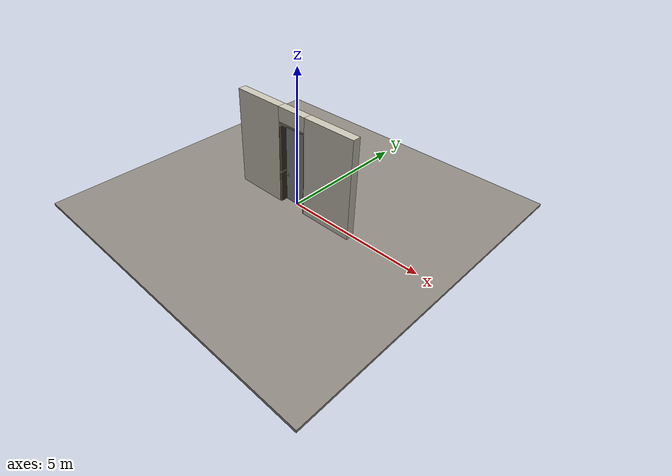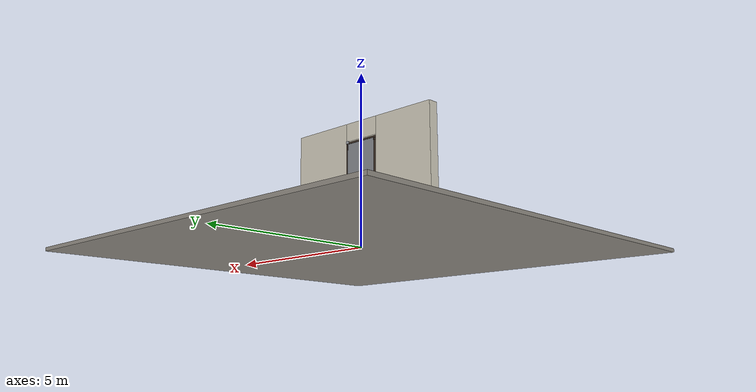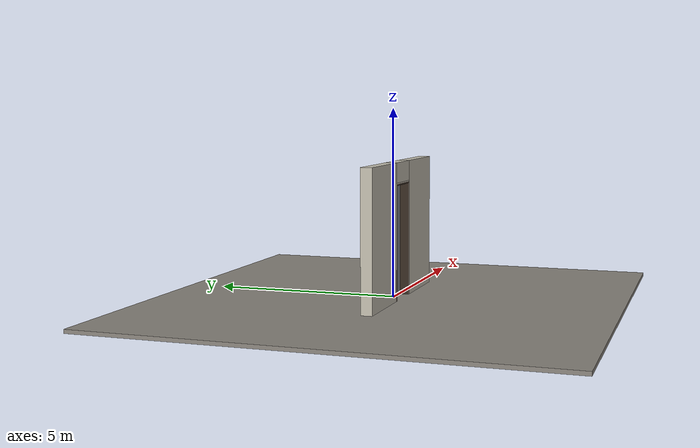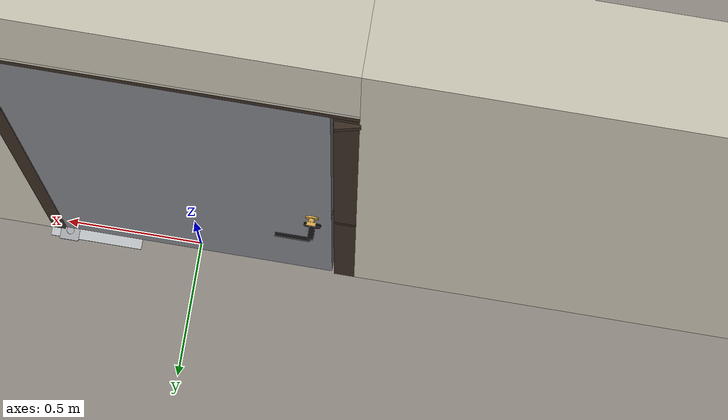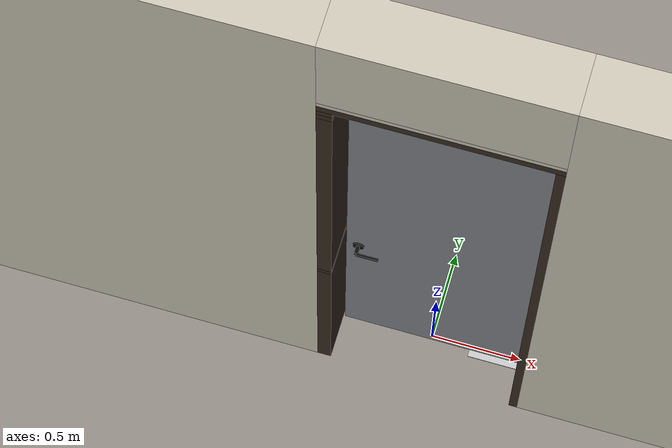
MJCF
<?xml version="1.0" ?>
<mujoco model="db0354_pivot_full">
  <compiler angle="radian" meshdir="../../hardware" texturedir="../../textures" autolimits="true" inertiafromgeom="false"/>
  <option timestep="0.002" integrator="implicitfast" cone="elliptic" impratio="10" noslip_iterations="3">
    <flag multiccd="enable"/>
  </option>
  <size memory="16M"/>
  <default>
    <geom condim="4" solref="0.005 1" solimp="0.95 0.99 0.001"/>
    <joint solreflimit="0.005 1" solimplimit="0.95 0.99 0.001"/>
    <tendon solreflimit="0.005 1"/>
    <equality solref="0.002 1"/>
  </default>
  <visual>
    <headlight ambient="0.4 0.4 0.4" diffuse="0.7 0.7 0.7" specular="0.2 0.2 0.2"/>
    <quality shadowsize="4096"/>
    <map znear="0.01" zfar="60"/>
  </visual>
  <asset>
    <mesh name="lever_57205841c3" file="lever_57205841c3.obj"/>
    <mesh name="thumbturn_eb5c9899a3" file="thumbturn_eb5c9899a3.obj"/>
    <material name="mat_floor" rgba="0.55 0.53 0.5 1" specular="0.2" shininess="0.15" reflectance="0"/>
    <material name="mat_wall" rgba="0.78 0.76 0.7 1" specular="0.2" shininess="0.1" reflectance="0"/>
    <material name="mat_leaf" rgba="0.5 0.51 0.53 1" specular="0.2" shininess="0.35" reflectance="0"/>
    <material name="mat_hinge" rgba="0.65 0.66 0.68 1" specular="0.74" shininess="0.5" reflectance="0.36"/>
    <material name="mat_op_black_matte_metal" rgba="0.05 0.05 0.05 1" specular="0.38" shininess="0.3" reflectance="0.12"/>
    <material name="mat_trim" rgba="0.85 0.66 0.3 1" specular="0.8" shininess="0.75" reflectance="0.4"/>
    <material name="mat_bolt" rgba="0.75 0.76 0.77 1" specular="0.8" shininess="0.65" reflectance="0.4"/>
    <material name="mat_deadbolt" rgba="0.85 0.66 0.3 1" specular="0.8" shininess="0.75" reflectance="0.4"/>
    <material name="mat_frame" rgba="0.22 0.17 0.13 1" specular="0.8" shininess="0.6" reflectance="0.4"/>
    <material name="mat_closer" rgba="0.75 0.76 0.77 1" specular="0.8" shininess="0.65" reflectance="0.4"/>
    <texture name="skybox" type="skybox" builtin="gradient" rgb1="0.6 0.7 0.85" rgb2="0.9 0.92 0.95" width="256" height="256"/>
  </asset>
  <worldbody>
    <light name="sun" pos="1.5 -2.5 4" dir="-0.3 0.5 -0.8" directional="true" diffuse="0.8 0.8 0.8" specular="0.3 0.3 0.3" castshadow="true"/>
    <light name="fill" pos="-1.5 2.5 3" dir="0.3 -0.5 -0.7" directional="true" diffuse="0.35 0.35 0.4" castshadow="false"/>
    <camera name="robot_view" pos="0 -3.56925 2.47165" xyaxes="1 0 0 0 0.26963 0.962964" fovy="52"/>
    <camera name="far_view" pos="0 3.32825 2.47165" xyaxes="-1 0 0 0 -0.26963 0.962964" fovy="52"/>
    <camera name="iso" pos="-2.62105 -3.01745 3.02345" xyaxes="0.741536 -0.670913 0 0.242917 0.268487 0.932151" fovy="46"/>
    <camera name="detail_handle" pos="-0.156 -0.8775 1.33" xyaxes="0.97561 0.219512 0 -0.070934 0.315262 0.94635" fovy="38"/>
    <geom name="floor" type="box" size="6 6 0.05" pos="0 0 -0.05" material="mat_floor" group="0" contype="1" conaffinity="1" friction="0.8 0.005 0.0001" density="2400"/>
    <geom name="wall_left" type="box" size="0.9595 0.15 1.806" pos="-1.5405 -0.1205 1.806" material="mat_wall" group="0" contype="1" conaffinity="1" friction="0.6 0.005 0.0001" density="800"/>
    <geom name="wall_right" type="box" size="0.9745 0.15 1.806" pos="1.5255 -0.1205 1.806" material="mat_wall" group="0" contype="1" conaffinity="1" friction="0.6 0.005 0.0001" density="800"/>
    <geom name="wall_header" type="box" size="0.566 0.15 0.2625" pos="-0.015 -0.1205 3.3495" material="mat_wall" group="0" contype="1" conaffinity="1" friction="0.6 0.005 0.0001" density="800"/>
    <geom name="pivot_bottom_socket" type="box" size="0.035 0.035 0.008" pos="0.487 0.0325 -0.002" material="mat_hinge" group="1" contype="0" conaffinity="0" density="7850"/>
    <geom name="pivot_top_bracket" type="box" size="0.035 0.035 0.0355" pos="0.487 0.0325 3.0515" material="mat_hinge" group="1" contype="0" conaffinity="0" density="7850"/>
    <geom name="leaf_deadbolt_strike_b" type="box" size="0.0155 0.003 0.0005" pos="-0.5055 0 1.1715" quat="0.5 0.5 0.5 0.5" material="mat_deadbolt" group="1" contype="0" conaffinity="0" density="7800"/>
    <geom name="leaf_deadbolt_strike_l" type="box" size="0.003 0.0155 0.0005" pos="-0.5055 -0.0125 1.19" quat="0.5 0.5 0.5 0.5" material="mat_deadbolt" group="1" contype="0" conaffinity="0" density="7800"/>
    <geom name="leaf_deadbolt_strike_t" type="box" size="0.0155 0.003 0.0005" pos="-0.5055 0 1.2085" quat="0.5 0.5 0.5 0.5" material="mat_deadbolt" group="1" contype="0" conaffinity="0" density="7800"/>
    <geom name="leaf_deadbolt_strike_r" type="box" size="0.003 0.0155 0.0005" pos="-0.5055 0.0125 1.19" quat="0.5 0.5 0.5 0.5" material="mat_deadbolt" group="1" contype="0" conaffinity="0" density="7800"/>
    <geom name="jamb_hinge" type="box" size="0.0225 0.15 1.506" pos="0.5285 -0.1205 1.506" material="mat_frame" group="0" contype="1" conaffinity="1" friction="0.6 0.005 0.0001" density="300"/>
    <geom name="strike_1190_wall_n" type="box" size="0.0375 0.1305 0.0155" pos="-0.5435 -0.14 1.19" material="mat_frame" group="0" contype="1" conaffinity="1" friction="0.6 0.005 0.0001" density="300"/>
    <geom name="strike_1190_wall_p" type="box" size="0.0375 0.01 0.0155" pos="-0.5435 0.0195 1.19" material="mat_frame" group="0" contype="1" conaffinity="1" friction="0.6 0.005 0.0001" density="300"/>
    <geom name="strike_1190_back" type="box" size="0.0228 0.0095 0.0155" pos="-0.5582 0 1.19" material="mat_frame" group="0" contype="1" conaffinity="1" friction="0.6 0.005 0.0001" density="300"/>
    <geom name="strike_2958_wall_n" type="box" size="0.0375 0.1315 0.019" pos="-0.5435 -0.139 2.958" material="mat_frame" group="0" contype="1" conaffinity="1" friction="0.6 0.005 0.0001" density="300"/>
    <geom name="strike_2958_wall_p" type="box" size="0.0375 0.008 0.019" pos="-0.5435 0.0155 2.958" material="mat_frame" group="0" contype="1" conaffinity="1" friction="0.6 0.005 0.0001" density="300"/>
    <geom name="strike_2958_ramp" type="box" size="0.0375 0.015403 0.019" pos="-0.546019 0.029979 2.958" quat="0.993439 0 0 0.114365" material="mat_frame" group="0" contype="1" conaffinity="1" friction="0.12 0.005 0.0001" density="300"/>
    <geom name="strike_2958_ramp_n" type="box" size="0.0375 0.015403 0.019" pos="-0.546019 -0.017979 2.958" quat="0.993439 0 0 -0.114365" material="mat_frame" group="0" contype="1" conaffinity="1" friction="0.12 0.005 0.0001" density="300"/>
    <geom name="strike_2958_back" type="box" size="0.0325 0.0075 0.019" pos="-0.5485 0 2.958" material="mat_frame" group="0" contype="1" conaffinity="1" friction="0.6 0.005 0.0001" density="300"/>
    <geom name="jamb_strike_0" type="box" size="0.0375 0.15 0.58725" pos="-0.5435 -0.1205 0.58725" material="mat_frame" group="0" contype="1" conaffinity="1" friction="0.6 0.005 0.0001" density="300"/>
    <geom name="jamb_strike_1" type="box" size="0.0375 0.15 0.86675" pos="-0.5435 -0.1205 2.07225" material="mat_frame" group="0" contype="1" conaffinity="1" friction="0.6 0.005 0.0001" density="300"/>
    <geom name="jamb_strike_2" type="box" size="0.0375 0.15 0.0175" pos="-0.5435 -0.1205 2.9945" material="mat_frame" group="0" contype="1" conaffinity="1" friction="0.6 0.005 0.0001" density="300"/>
    <geom name="jamb_head" type="box" size="0.566 0.15 0.0225" pos="-0.015 -0.1205 3.0345" material="mat_frame" group="0" contype="1" conaffinity="1" friction="0.6 0.005 0.0001" density="300"/>
    <geom name="head_stud" type="box" size="0.566 0.15 0.015" pos="-0.015 -0.1205 3.072" material="mat_wall" group="0" contype="1" conaffinity="1" friction="0.6 0.005 0.0001" density="500"/>
    <geom name="floor_spring_cover" type="box" size="0.17 0.06 0.002" pos="0.386 0 0.002" material="mat_closer" group="1" contype="0" conaffinity="0" density="7900"/>
    <site name="approach_point" pos="0 -1.5 0" quat="1 0 0 0" size="0.05" rgba="0.2 0.9 0.2 0.5" group="4"/>
    <site name="goal_point" pos="0 1.5 0" quat="1 0 0 0" size="0.05" rgba="0.2 0.9 0.2 0.5" group="4"/>
    <site name="door_plane_center" pos="0 0 1.506" quat="1 0 0 0" size="0.02" rgba="0.2 0.9 0.2 0.5" group="4"/>
    <body name="leaf" pos="0.506 0 0">
      <inertial pos="-0.50277 0.000025 1.508159" mass="102.804599" quat="0.500006 -0.499934 -0.500066 -0.499994" diaginertia="8.601053667 77.249867831 85.816084915"/>
      <joint name="leaf_hinge" type="hinge" axis="0 0 -1" pos="-0.019 0.0325 0" limited="true" range="0 2.443461" damping="8.5418" frictionloss="0.924991" stiffness="35.039552" springref="-1.679816" armature="0.02"/>
      <geom name="leaf_slab" type="box" size="0.5 0.0225 1.5" pos="-0.503 0 1.508" material="mat_leaf" group="0" contype="1" conaffinity="1" friction="0.4 0.005 0.0001" density="1"/>
      <geom name="pivot_bottom" type="cylinder" size="0.014 0.004" pos="-0.019 0.0325 0.003" material="mat_hinge" group="1" contype="0" conaffinity="0" density="7850"/>
      <geom name="pivot_top" type="cylinder" size="0.014 0.004" pos="-0.019 0.0325 3.012" material="mat_hinge" group="1" contype="0" conaffinity="0" density="7850"/>
      <geom name="leaf_mag_catch_faceplate" type="box" size="0.0006 0.012 0.029" pos="-1.0024 0 2.958" material="mat_bolt" group="1" contype="0" conaffinity="0" density="8500"/>
      <geom name="leaf_deadbolt_faceplate" type="box" size="0.0006 0.014 0.0245" pos="-1.0024 0 1.19" material="mat_deadbolt" group="1" contype="0" conaffinity="0" density="8500"/>
      <site name="leaf_edge_mid" pos="-1.003 0 1.5" quat="1 0 0 0" size="0.02" rgba="0.2 0.9 0.2 0.5" group="4"/>
      <body name="leaf_handle" pos="-0.938 0 1.05">
        <inertial pos="0.018405 0 0" mass="0.807332" quat="0 0.707107 0.707107 0" diaginertia="0.001006802 0.002635066 0.003537243"/>
        <joint name="leaf_handle_hinge" type="hinge" axis="0 1 0" limited="true" range="0 0.87" damping="0.212417" frictionloss="0.042" stiffness="1" springref="-0.35" armature="0.01"/>
        <geom name="leaf_handle_spindle" type="cylinder" size="0.006 0.0305" pos="0 0 0" quat="0.707107 -0.707107 0 0" material="mat_op_black_matte_metal" group="1" contype="0" conaffinity="0" density="7850"/>
        <geom name="leaf_handle_lever_n" type="mesh" mesh="lever_57205841c3" pos="0 -0.0225 0" quat="0 0 -0.707107 0.707107" material="mat_op_black_matte_metal" group="1" contype="0" conaffinity="0" density="3000"/>
        <geom name="leaf_handle_lever_col_n" type="capsule" size="0.007 0.053" pos="0.06 -0.0775 0" quat="0.707107 0 0.707107 0" material="mat_op_black_matte_metal" group="3" contype="1" conaffinity="1" rgba="0.8 0.3 0.3 0.25" friction="0.7 0.01 0.0001" density="3000"/>
        <geom name="leaf_handle_hub_col_n" type="cylinder" size="0.012 0.022" pos="0 -0.0525 0" quat="0.707107 -0.707107 0 0" material="mat_op_black_matte_metal" group="3" contype="1" conaffinity="1" rgba="0.8 0.3 0.3 0.25" friction="0.6 0.005 0.0001" density="3000"/>
        <geom name="leaf_handle_lever_p" type="mesh" mesh="lever_57205841c3" pos="0 0.0225 0" quat="0 0 0.707107 0.707107" material="mat_op_black_matte_metal" group="1" contype="0" conaffinity="0" density="3000"/>
        <geom name="leaf_handle_lever_col_p" type="capsule" size="0.007 0.053" pos="0.06 0.0775 0" quat="0.707107 0 0.707107 0" material="mat_op_black_matte_metal" group="3" contype="1" conaffinity="1" rgba="0.8 0.3 0.3 0.25" friction="0.7 0.01 0.0001" density="3000"/>
        <geom name="leaf_handle_hub_col_p" type="cylinder" size="0.012 0.022" pos="0 0.0525 0" quat="0.707107 -0.707107 0 0" material="mat_op_black_matte_metal" group="3" contype="1" conaffinity="1" rgba="0.8 0.3 0.3 0.25" friction="0.6 0.005 0.0001" density="3000"/>
        <site name="leaf_handle_grip_n" pos="0.096 -0.0775 0" quat="1 0 0 0" size="0.012" rgba="0.2 0.9 0.2 0.5" group="4"/>
        <site name="leaf_handle_grip_p" pos="0.096 0.0775 0" quat="1 0 0 0" size="0.012" rgba="0.2 0.9 0.2 0.5" group="4"/>
      </body>
      <body name="leaf_mag_catch" pos="-1.003 0 2.958">
        <inertial pos="0.012 0 0" mass="0.030762" quat="0 0 -0.707107 0.707107" diaginertia="0.000000526 0.000002949 0.000002949"/>
        <joint name="leaf_mag_catch_slide" type="slide" axis="1 0 0" limited="true" range="0 0.006" damping="2" frictionloss="0.3" stiffness="5833.333333" springref="-0.006" armature="0.1"/>
        <geom name="leaf_mag_catch_capsule" type="capsule" size="0.006 0.012" pos="0.012 0 0" quat="0.707107 0 -0.707107 0" material="mat_bolt" group="0" contype="1" conaffinity="1" friction="0.2 0.005 0.0001" density="8500"/>
      </body>
      <body name="leaf_deadbolt" pos="-1.003 0 1.19">
        <inertial pos="0.0277 0 0" mass="0.18836" quat="0 0 0.707107 0.707107" diaginertia="0.000013829 0.000052194 0.000057986"/>
        <joint name="leaf_deadbolt_slide" type="slide" axis="1 0 0" limited="true" range="0 0.0254" damping="5" frictionloss="1.5" armature="0.1" ref="0.0254"/>
        <geom name="leaf_deadbolt_box" type="box" size="0.0277 0.008 0.0125" pos="0.0277 0 0" material="mat_deadbolt" group="0" contype="1" conaffinity="1" friction="0.3 0.005 0.0001" density="8500"/>
      </body>
      <body name="leaf_deadbolt_thumbturn" pos="-0.938 0.0225 1.19">
        <inertial pos="0 0.012928 0" mass="0.178946" quat="0.000001 -0.707107 0.707107 -0.000001" diaginertia="0.000026045 0.000026215 0.000032438"/>
        <joint name="leaf_deadbolt_thumbturn_hinge" type="hinge" axis="0 -1 0" limited="true" range="0 1.5708" damping="0.05" frictionloss="0.3" armature="0.005" ref="1.5708"/>
        <geom name="leaf_deadbolt_thumbturn_mesh" type="mesh" mesh="thumbturn_eb5c9899a3" pos="0 0 0" quat="0.500001 -0.500001 0.499999 0.499999" material="mat_deadbolt" group="0" contype="1" conaffinity="1" friction="0.6 0.005 0.0001" density="7100"/>
        <geom name="leaf_deadbolt_thumbturn_col" type="box" size="0.006 0.012 0.016" pos="0 0.02 0" quat="0.707105 0 -0.707108 0" material="mat_deadbolt" group="3" contype="1" conaffinity="1" rgba="0.8 0.3 0.3 0.25" friction="0.6 0.005 0.0001" density="7100"/>
      </body>
    </body>
  </worldbody>
  <equality>
    <joint name="leaf_deadbolt_couple" joint1="leaf_deadbolt_slide" joint2="leaf_deadbolt_thumbturn_hinge" polycoef="0 0.01617 0 0 0" active="true"/>
  </equality>
  <contact>
    <exclude body1="leaf_deadbolt" body2="leaf_deadbolt_thumbturn"/>
  </contact>
  <sensor>
    <jointpos name="leaf_hinge_pos" joint="leaf_hinge"/>
    <jointvel name="leaf_hinge_vel" joint="leaf_hinge"/>
    <jointpos name="leaf_handle_hinge_pos" joint="leaf_handle_hinge"/>
    <jointvel name="leaf_handle_hinge_vel" joint="leaf_handle_hinge"/>
    <jointpos name="leaf_mag_catch_slide_pos" joint="leaf_mag_catch_slide"/>
    <jointvel name="leaf_mag_catch_slide_vel" joint="leaf_mag_catch_slide"/>
    <jointpos name="leaf_deadbolt_slide_pos" joint="leaf_deadbolt_slide"/>
    <jointvel name="leaf_deadbolt_slide_vel" joint="leaf_deadbolt_slide"/>
    <jointpos name="leaf_deadbolt_thumbturn_hinge_pos" joint="leaf_deadbolt_thumbturn_hinge"/>
    <jointvel name="leaf_deadbolt_thumbturn_hinge_vel" joint="leaf_deadbolt_thumbturn_hinge"/>
  </sensor>
</mujoco>
